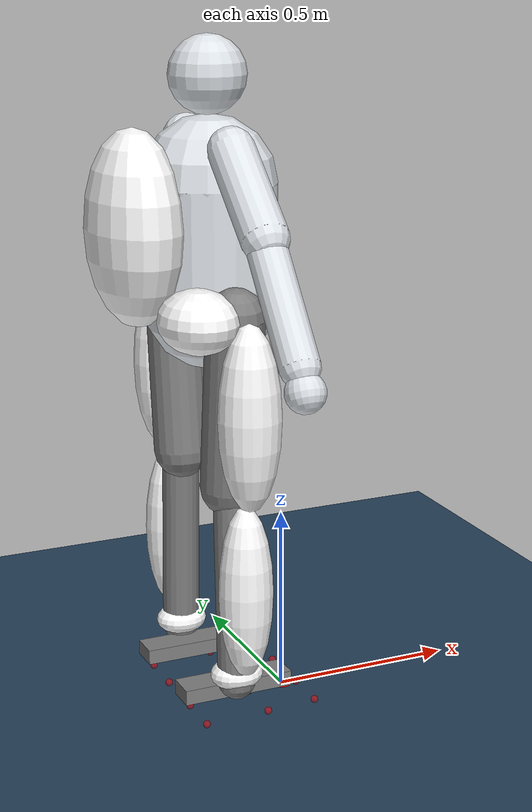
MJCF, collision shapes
<mujoco model='exoskeleton'>
            <compiler meshdir="obj-files" angle="degree" autolimits="true"/>
            <size nuser_actuator='1' nuser_sensor='8' nuser_geom='1'/>
            <option timestep="0.02" iterations="5" ls_iterations="10" gravity='0 0 -9.81'>
                <flag multiccd="disable"/>
            </option>

            <visual>
                <map force="0.1" zfar="30"/>
                <rgba haze="0.15 0.25 0.35 1"/>
                <quality shadowsize="4096"/>
                <global offwidth="800" offheight="800"/>
            </visual>

            <default>
                <site group="5" />
                <motor ctrlrange="-1 1" ctrllimited="true" />
                <geom contype="0" conaffinity="0" condim="1" solref="0.005 1" />
                <equality solref="0.005 1" />
            </default>

            <!-- Nested defaults for exoskeleton, collisions, and joints -->
            <default>
                <default class="exoskeleton">
                <geom material="march_grey" group="2" contype="0" conaffinity="0"/>
                </default>
                <default class= "humanoid">
                <geom material="march_grey" group="1" contype="0" conaffinity="0"/>
                </default>
                <default class ="foot_collision">
                  <geom group="3" contype="1" conaffinity="1" friction = "1" rgba="1 1 1 0.5"/>
                </default>

                <default class="collision">
                <geom type="capsule" group="3" contype="1" conaffinity="1" rgba="1 1 1 0.5"/>
                </default>

                <default class="L_collision">
                <geom type="capsule" group="3" contype="2" conaffinity="4" rgba="1 1 1 0.5"/>
                </default>

                <default class="R_collision">
                <geom type="capsule" group="3" contype="4" conaffinity="2" rgba="1 1 1 0.5"/>
                </default>

                <default class="HAA_joint">
                <joint damping="107.692308" armature="5.4" frictionloss="5" stiffness="0"/>
                </default>

                <default class="ADPF_joint">
                <joint damping="43.658537" armature="2.2" frictionloss="5" stiffness="0"/>
                </default>

                <default class="rotational_joint">
                <joint damping="63.451777" armature="9.98" frictionloss="5" stiffness="0"/>
                </default>

                <default class="AIE_joint">
                <joint damping="63.451777" armature="2.2" frictionloss="5" stiffness="0"/>
                </default>
            </default>

            <asset>
                <texture type="skybox" builtin="gradient" rgb1=".3 .5 .7" rgb2="0 0 0" width="512" height="512"/>
                <texture name="body" type="cube" builtin="flat" mark="cross" width="127" height="1278"
                        rgb1="0.8 0.6 0.4" rgb2="0.8 0.6 0.4" markrgb="1 1 1" random="0.01"/>
                <texture name="grid" type="2d" builtin="checker" width="512" height="512" rgb1=".1 .2 .3" rgb2=".2 .3 .4"/>
                <material name="grid" texture="grid" texrepeat="1 1" texuniform="true" reflectance=".2"/>
                <material name="march_grey" rgba=".87 .89 .91 1"/>
                <material name="collision" rgba="1 0 0 1"/>

                <mesh name="backpack"    scale="-1 1 1"   file="Backplate.obj"/>
                <mesh name="L_Ankle"     scale="-1 -1 1"   file="L_Ankle.obj"/>
                <mesh name="L_Hip"       scale="-1 -1 1"   file="L_Hip.obj"/>
                <mesh name="L_UpperLeg"  scale="-1 -1 1"   file="L_UpperLeg.obj"/>
                <mesh name="L_LowerLeg"  scale="-1 -1 1"   file="L_LowerLeg.obj"/>
                <mesh name="L_Sole"      scale="-1 -1 1"   file="L_Foot.obj"/>

                <mesh name="R_Ankle"     scale="-1 1 1"    file="L_Ankle.obj"/>
                <mesh name="R_Hip"       scale="-1 1 1"    file="L_Hip.obj"/>
                <mesh name="R_UpperLeg"  scale="-1 1 1"    file="L_UpperLeg.obj"/>
                <mesh name="R_LowerLeg"  scale="-1 1 1"    file="L_LowerLeg.obj"/>
                <mesh name="R_Sole"      scale="-1 1 1"    file="L_Foot.obj"/>
            </asset>

  <actuator>
    <motor name="left_ankle_ie" gear="100" joint="left_ankle_ie" />
    <motor name="left_ankle_dpf" gear="100" joint="left_ankle_dpf" />
    <motor name="left_hip_aa" gear="100" joint="left_hip_aa" />
    <motor name="left_hip_fe" gear="100" joint="left_hip_fe" />
    <motor name="left_knee" gear="100" joint="left_knee" />
    <motor name="right_ankle_ie" gear="100" joint="right_ankle_ie" />
    <motor name="right_ankle_dpf" gear="100" joint="right_ankle_dpf" />
    <motor name="right_hip_aa" gear="100" joint="right_hip_aa" />
    <motor name="right_hip_fe" gear="100" joint="right_hip_fe" />
    <motor name="right_knee" gear="100" joint="right_knee" />

  </actuator>

            <sensor>

        <!-- ZMP sensors right foot-->
     <!--Back left  -->
    <framepos name="R_foot_pos_bl" objtype="geom" objname="R_foot_contact_bl"/>
    <!--Back right  -->
    <framepos name="R_foot_pos_br" objtype="geom" objname="R_foot_contact_br"/>
    <!--Front left  -->
    <framepos name="R_foot_pos_fl" objtype="geom" objname="R_foot_contact_fl"/>
    <!--Front right  -->
    <framepos name="R_foot_pos_fr" objtype="geom" objname="R_foot_contact_fr"/>

    <!-- ZMP sensors left foot-->
    <framepos name="L_foot_pos_bl" objtype="geom" objname="L_foot_contact_bl"/>
    <framepos name="L_foot_pos_br" objtype="geom" objname="L_foot_contact_br"/>
    <framepos name="L_foot_pos_fl" objtype="geom" objname="L_foot_contact_fl"/>
    <framepos name="L_foot_pos_fr" objtype="geom" objname="L_foot_contact_fr"/>

                <!-- Noise & cutoff must be determined -->
                <!-- Noise & cutoff must be determined -->
              <framequat name='backpack_orientation' objtype='site' objname='imu_backpack'/>
              <gyro name='vel_imu_backpack' site='imu_backpack' noise='0' cutoff='34.9'/>
              <accelerometer name='acc_imu_backpack' site='imu_backpack' noise='0' cutoff='157'/>
              <subtreecom name="torso_subtreecom" body="backpack"/>
              <framequat name='L_UL_orientation' objtype='site' objname='L_UL_imu'/>
              <gyro name='vel_L_UL_imu' site='L_UL_imu' noise='0' cutoff='34.9'/>
              <accelerometer name='acc_L_UL_imu' site='L_UL_imu' noise='0' cutoff='157'/>

              <framequat name='L_LL_orientation' objtype='site' objname='L_LL_imu'/>
              <gyro name='vel_L_LL_imu' site='L_LL_imu' noise='0' cutoff='34.9'/>
              <accelerometer name='acc_L_LL_imu' site='L_LL_imu' noise='0' cutoff='157'/>

              <framequat name="R_UL_orientation" objtype="site" objname="R_UL_imu"/>
              <gyro name="vel_R_UL_imu" site="R_UL_imu" noise="0" cutoff="34.9"/>
              <accelerometer name="acc_R_UL_imu" site="R_UL_imu" noise="0" cutoff="157"/>

              <framequat name="R_LL_orientation" objtype="site" objname="R_LL_imu"/>
              <gyro name="vel_R_LL_imu" site="R_LL_imu" noise="0" cutoff="34.9"/>
              <accelerometer name="acc_R_LL_imu" site="R_LL_imu" noise="0" cutoff="157"/>

              <framequat name="L_hip_orientation" objtype="site" objname="L_hip_imu"/>
              <gyro name="vel_L_hip_imu" site="L_hip_imu" noise="0" cutoff="34.9"/>
              <accelerometer name="acc_L_hip_imu" site="L_hip_imu" noise="0" cutoff="157"/>

              <framequat name="R_hip_orientation" objtype="site" objname="R_hip_imu"/>
              <gyro name="vel_R_hip_imu" site="R_hip_imu" noise="0" cutoff="34.9"/>
              <accelerometer name="acc_R_hip_imu" site="R_hip_imu" noise="0" cutoff="157"/>

              <framequat name="L_ankle_orientation" objtype="site" objname="L_ankle_imu"/>
              <gyro name="vel_L_ankle_imu" site="L_ankle_imu" noise="0" cutoff="34.9"/>
              <accelerometer name="acc_L_ankle_imu" site="L_ankle_imu" noise="0" cutoff="157"/>

              <framequat name="R_ankle_orientation" objtype="site" objname="R_ankle_imu"/>
              <gyro name="vel_R_ankle_imu" site="R_ankle_imu" noise="0" cutoff="34.9"/>
              <accelerometer name="acc_R_ankle_imu" site="R_ankle_imu" noise="0" cutoff="157"/>

              <framequat name="L_foot_orientation" objtype="site" objname="L_foot_imu"/>
              <gyro name="vel_L_foot_imu" site="L_foot_imu" noise="0" cutoff="34.9"/>
              <accelerometer name="acc_L_foot_imu" site="L_foot_imu" noise="0" cutoff="157"/>

              <framequat name="R_foot_orientation" objtype="site" objname="R_foot_imu"/>
              <gyro name="vel_R_foot_imu" site="R_foot_imu" noise="0" cutoff="34.9"/>
              <accelerometer name="acc_R_foot_imu" site="R_foot_imu" noise="0" cutoff="157"/>

              <!-- Human body IMUs -->
              <framequat name="torso_orientation" objtype="site" objname="torso_imu"/>
              <gyro name="vel_torso_imu" site="torso_imu" noise="0" cutoff="34.9"/>
              <accelerometer name="acc_torso_imu" site="torso_imu" noise="0" cutoff="157"/>

              <framequat name="right_arm_orientation" objtype="site" objname="right_arm_imu"/>
              <gyro name="vel_right_arm_imu" site="right_arm_imu" noise="0" cutoff="34.9"/>
              <accelerometer name="acc_right_arm_imu" site="right_arm_imu" noise="0" cutoff="157"/>

              <framequat name="right_forearm_orientation" objtype="site" objname="right_forearm_imu"/>
              <gyro name="vel_right_forearm_imu" site="right_forearm_imu" noise="0" cutoff="34.9"/>
              <accelerometer name="acc_right_forearm_imu" site="right_forearm_imu" noise="0" cutoff="157"/>

              <framequat name="right_hand_orientation" objtype="site" objname="right_hand_imu"/>
              <gyro name="vel_right_hand_imu" site="right_hand_imu" noise="0" cutoff="34.9"/>
              <accelerometer name="acc_right_hand_imu" site="right_hand_imu" noise="0" cutoff="157"/>

              <framequat name="left_arm_orientation" objtype="site" objname="left_arm_imu"/>
              <gyro name="vel_left_arm_imu" site="left_arm_imu" noise="0" cutoff="34.9"/>
              <accelerometer name="acc_left_arm_imu" site="left_arm_imu" noise="0" cutoff="157"/>

              <framequat name="left_forearm_orientation" objtype="site" objname="left_forearm_imu"/>
              <gyro name="vel_left_forearm_imu" site="left_forearm_imu" noise="0" cutoff="34.9"/>
              <accelerometer name="acc_left_forearm_imu" site="left_forearm_imu" noise="0" cutoff="157"/>

              <framequat name="left_hand_orientation" objtype="site" objname="left_hand_imu"/>
              <gyro name="vel_left_hand_imu" site="left_hand_imu" noise="0" cutoff="34.9"/>
              <accelerometer name="acc_left_hand_imu" site="left_hand_imu" noise="0" cutoff="157"/>

              <framequat name="head_orientation" objtype="site" objname="head_imu"/>
              <gyro name="vel_head_imu" site="head_imu" noise="0" cutoff="34.9"/>
              <accelerometer name="acc_head_imu" site="head_imu" noise="0" cutoff="157"/>

                <!-- Pressure sensors for left foot -->
                <touch name="pressure_sp0" site="sp0" cutoff="1"/>
                <touch name="pressure_sp1" site="sp1" cutoff="1"/>
                <touch name="pressure_sp2" site="sp2" cutoff="1"/>
                <touch name="pressure_sp3" site="sp3" cutoff="1"/>

                <!-- Pressure sensors for right foot -->
                <touch name="pressure_sp4" site="sp4" cutoff="1"/>
                <touch name="pressure_sp5" site="sp5" cutoff="1"/>
                <touch name="pressure_sp6" site="sp6" cutoff="1"/>
                <touch name="pressure_sp7" site="sp7" cutoff="1"/>
            </sensor>
            <keyframe><key name='home' qpos='0 0 1.01 0.9990482 0 0.0436194 0 0.0538850788003355 0.163444867517726 0.3114220463634088 0.1834168026738673 0.0538736103022484 0.0538904247681917 0.1634221502873682 0.3113776463689615 0.1833954904567925 0.0538794144550795'/></keyframe><worldbody><geom name='floor' size='0 0 .05' type='plane' material='grid' pos='0 0 0' conaffinity='15' condim='6' solref='0.000002 1' solimp='0.99 0.999 0.000001' friction='3 0.005 0.0001'/><light name='spotlight' mode='targetbodycom' target='backpack' diffuse='.8 .8 .8' specular='0.3 0.3 0.3' pos='0 -20 4' cutoff='10'/>

            <body name="safety_catcher" pos="-0.4 0.0 1.03">
            <inertial pos="0 0 0" mass="0.1" diaginertia="10 10 10"/>

            <joint name='safety_catch_free' type='free'/>

      <body name="backpack" pos="0.00000 0.00000 0.28000">
        <light name="top" pos="0.00000 0.00000 2.00000" mode="trackcom" />
        <camera name="diag" pos="3.00000 -2.50000 1.00000" xyaxes="1 1 0 0 1 2" mode="track" />
        <camera name="right" pos="0.00000 -3.00000 1.00000" xyaxes="1 0 0 0 1 2" mode="track" />
        <camera name="front" pos="4.00000 0.00000 0.00000" xyaxes="0 1 0 0 1 2" mode="track" />
        <inertial mass="3.205" pos="-0.00400 0 -0.01700" fullinertia="0.13140 0.04400 0.08870 -0.00000 -0.00100 0.00000" />
        <site name="imu_backpack" size="0.01" pos="-0.00400 0 -0.01700" />
        <geom name="backpack" type="mesh" mesh="backpack" />
        <geom name="backpack_ellipsoid" type="ellipsoid" size="0.12 0.18 0.25" material="march_grey" class="collision"/>
        <site name="pos_backpack" size="0.001" pos="0.00000 0.00000 0.00000" />

         <body name ="torso" pos="0.2 0 -0.3" >
          <geom name="torso" type="capsule" fromto="0 0 0.1 0 0 0.4" size="0.175" mass="43.2" class="humanoid"/>
          <site name="torso_imu" size="0.01" pos="0 0 0.25" />
        </body>

        <body name="right arm" pos="0.20 0.150 0.2" euler="25 0 0" >
          <geom name="right arm" type="capsule" fromto="0 0.105 -0.250 0 0 0" size="0.06" mass="3.38" class="humanoid"/>
          <site name="right_arm_imu" size="0.01" pos="0 0.0525 -0.125" />

          <body name="right forearm" pos="0 0.105 -0.280">
            <geom name="right forearm" type="capsule" fromto="0 0.065 -0.290 0 0 0" size="0.05" mass="1.15" class="humanoid"/>
            <site name="right_forearm_imu" size="0.01" pos="0 0.0325 -0.145" />

            <body name="right hand" pos="0 0.07 -0.300">
              <geom name="right hand" type="sphere" size="0.05" pos="0 0.0 -0.05" mass="0.9876" class="humanoid"/>
              <site name="right_hand_imu" size="0.01" pos="0 0 -0.05" />
            </body>
          </body>
        </body>

        <body name="left arm" pos="0.20 -0.150 0.2" euler="-25 0 0">
          <geom name="left arm" type="capsule" fromto="0 -0.105 -0.250 0 0 0" size="0.06" mass="3.38" class="humanoid"/>
          <site name="left_arm_imu" size="0.01" pos="0 -0.0525 -0.125" />

          <body name="left forearm" pos="0 -0.105 -0.280">
            <geom name="left forearm" type="capsule" fromto="0 -0.065 -0.290 0 0 0" size="0.05" mass="1.15" class="humanoid"/>
            <site name="left_forearm_imu" size="0.01" pos="0 -0.0325 -0.145" />
            <body name="left hand" pos="0 -0.07 -0.300">

              <geom name="left hand" type="sphere" size="0.05" pos="0 0 -0.05" mass="0.9876" class="humanoid"/>
              <site name="left_hand_imu" size="0.01" pos="0 0 -0.05" />
            </body>
          </body>
        </body>

        <body name="head">
          <geom name="head" type="sphere" size="0.1" pos="0.2 0 0.37" mass="8" class="humanoid"/>
          <site name="head_imu" size="0.01" pos="0.2 0 0.37" />
        </body>

        <body name="L_hip" pos="0.00400 0.09200 -0.20000">
          <inertial mass="3.363" pos="0.12400 0.17000 0.00700" fullinertia="0.11230 0.08360 0.18680 -0.08410 -0.00300 -0.00320" />
          <joint name="left_hip_aa" axis="-1 0 0" range="-20 10" limited="true" class="HAA_joint" />
          <site name="tor_L_HAA" size="0.01" pos="0.00000 0.00000 0.00000" />
          <site name="pos_L_HAA" size="0.01" pos="0.00000 0.00000 0.00000" />
          <site name="L_hip_imu" size="0.01" pos="0.12400 0.17000 0.00700" />
          <geom name="L_Hip" type="mesh" mesh="L_Hip" />
         <geom name="L_Hip_ellipsoid" type="ellipsoid" size="0.10 0.12 0.08" pos="0.08 0.12 0" material="march_grey" class="L_collision"/>

         <body name="L_UL" pos="0.17600 0.24900 0.00100">
            <inertial mass="4.473" pos="0.02600 -0.07500 -0.23600" fullinertia="0.49120 0.46540 0.04310 0.00890 0.02870 -0.11260" />
            <joint name="left_hip_fe" axis="0 -1 0" range="-20 115" limited="true" class="rotational_joint" />
            <site name="tor_L_HFE" size="0.01" pos="0.00000 0.00000 0.00000" />
            <site name="pos_L_HFE" size="0.01" pos="0.00000 0.00000 0.00000" />
            <site name="L_UL_imu" size="0.01" pos="0.02600 -0.07500 -0.23600" />

            <geom name="L_UpperLeg" type="mesh" mesh="L_UpperLeg" />
            <geom name="L_UpperLeg_ellipsoid" type="ellipsoid" size="0.08 0.08 0.24" pos="0 -0.04 -0.235" material="march_grey" class="L_collision"/>

                    <body> <geom type="capsule" fromto="0 -0.125 0 0 -0.175 -0.45" size="0.075" mass="8.44"/> </body>

             <body name="L_LL" pos="0.00200 -0.0600 -0.47200">
              <inertial mass="4.973" pos="0.00300 -0.04600 -0.14500" fullinertia="0.21540 0.22000 0.03000 0.00140 -0.00290 -0.03550" />
              <joint name="left_knee" axis="0 1 0" range="0 125" limited="true" class="rotational_joint" />
              <site name="tor_L_KFE" size="0.01" pos="0.00000 0.00000 0.00000" />
              <site name="pos_L_KFE" size="0.01" pos="0.00000 0.00000 0.00000" />
              <site name="L_LL_imu" size="0.01" pos="0.00300 -0.04600 -0.14500" />
              <geom name="L_LowerLeg" type="mesh" mesh="L_LowerLeg" />
              <geom name="L_LowerLeg_ellipsoid" type="ellipsoid" size="0.07 0.07 0.23" pos="0 -0.015 -0.23" material="march_grey" class="L_collision"/>

                    <body> <geom type="capsule" fromto="0 -0.1 0 0 -0.08 -0.5" size="0.05" mass="2.3"/> </body>

                <body name="L_ankle" pos="0.0000 -0.02500 -0.46800">
                <inertial mass="0.515" pos=" 0.00400 -0.06000 -0.01800" fullinertia="0.00240 0.00260 0.00460 0.00010 -0.00000 -0.00060" />
                <joint name="left_ankle_dpf" axis="0 -1 0" range="-28 17" limited="true" class="AIE_joint" />
                <site name="tor_L_ADPF" size="0.01" pos="0.00000 0.00000 0.00000" />
                <site name="tor_L_AIE" size="0.01" pos="-0.13100 -0.11400 -0.02600" />
                <site name="pos_L_ankle" size="0.01" pos="0.00000 0.00000 0.00000" />
                <site name="L_ankle_imu" size="0.01" pos="0.00400 -0.06000 -0.01800" />

                <geom name="L_Ankle" type="mesh" mesh="L_Ankle" />
                <geom name="L_Ankle_ellipsoid" type="ellipsoid" size="0.07 0.06 0.04" pos="0 -0.06 -0.015" material="march_grey" class="L_collision"/>

               <body name="L_foot" pos="-0.13500 -0.1200 -0.02600">
                  <inertial mass="4.440" pos=" 0.16300 0.02400 -0.06000" fullinertia="0.04700 0.19090 0.17630 -0.01390 0.04760 -0.00130" />
                  <joint name="left_ankle_ie" pos="-0.0 -0.0 -0.0" axis="1 0 0" range="-10 10" limited="true" class="AIE_joint" />
                  <site name="left_foot" pos="0.00000 0.00000 0.00000" size="0.01" rgba="1 0 0 0.5" />
                  <site name="L_foot_imu" size="0.01" pos="0.16300 0.02400 -0.06000" />

                  <!-- Multi-point contact system for left foot -->
                  <!-- Back-right corner -->
                  <geom name="L_foot_contact_br" type="sphere" size="0.0001" pos="0.05000 -0.0600 -0.11900" class="foot_collision"/>
                  <geom name="L_foot_visual_br" type="sphere" size="0.01" pos="0.05000 -0.0600 -0.11900" contype="0" conaffinity="0" group="1" density="0" rgba="1 0 0 0.5"/>

                  <!-- Back-left corner -->
                  <geom name="L_foot_contact_bl" type="sphere" size="0.0001" pos="0.05000 0.0600 -0.11900" class="foot_collision"/>
                  <geom name="L_foot_visual_bl" type="sphere" size="0.01" pos="0.05000 0.0600 -0.11900" contype="0" conaffinity="0" group="1" density="0" rgba="1 0 0 0.5"/>

                  <!-- Front-right corner -->
                   <geom name="L_foot_contact_fr" type="sphere" size="0.0001" pos="0.3600 -0.0600 -0.11000" class="foot_collision"/>
                  <geom name="L_foot_visual_fr" type="sphere" size="0.01" pos="0.3600 -0.0600 -0.11000" contype="0" conaffinity="0" group="1" density="0" rgba="1 0 0 0.5"/>

                  <!-- Front-left corner -->
                  <geom name="L_foot_contact_fl" type="sphere" size="0.0001" pos="0.3600 0.0600 -0.11000" class="foot_collision"/>
                  <geom name="L_foot_visual_fl" type="sphere" size="0.01" pos="0.3600 0.0600 -0.11000" contype="0" conaffinity="0" group="1" density="0" rgba="1 2 2 2"/>
                  <!-- Mid-back-left -->
                  <geom name="L_foot_contact_mbl" type="sphere" size="0.0001" pos="0.22250 -0.06500 -0.11350" class="foot_collision"/>
                  <geom name="L_foot_visual_mbl" type="sphere" size="0.01" pos="0.22250 -0.06500 -0.11350" contype="0" conaffinity="0" group="1" density="0" rgba="1 0 0 0.5"/>

                  <!-- Mid-back-right -->
                  <geom name="L_foot_contact_mbr" type="sphere" size="0.0001" pos="0.22250 0.06500 -0.11350" class="foot_collision"/>
                  <geom name="L_foot_visual_mbr" type="sphere" size="0.01" pos="0.22250 0.06500 -0.11350" contype="0" conaffinity="0" group="1" density="0" rgba="1 0 0 0.5"/>

                  <geom name="L_Foot" type="mesh" mesh="L_Sole" />

                  <!-- Touch sensor sites -->
                  <site name="sp0" pos="0.05000 -0.0600 -0.11900" type="sphere" size=".01" group="10" />
                  <site name="sp1" pos="0.05000 0.0600 -0.11900" type="sphere" size=".01" group="10" />
                  <site name="sp2" pos="0.3600 -0.05500 -0.11000" type="sphere" size=".01" group="10" />
                  <site name="sp3" pos="0.3600 0.05500 -0.11000" type="sphere" size=".01" group="10" />

                        <body> <geom type="box" pos="0.151 0 -.045" size="0.15 0.04 0.02"/> </body>

                        </body>
                    </body>
                    </body>
                </body>
                </body>

                <!--  RIGHT LEG -->
        <body name="R_hip" pos="0.00400 -0.09200 -0.20000">
          <inertial mass="3.363" pos="0.11200 -0.17000 0.00700" fullinertia="0.11230 0.08360 0.18680 0.08410 -0.00300 0.00320" />
          <joint name="right_hip_aa" axis="1 0 0" range="-20 10" limited="true" class="HAA_joint" />
          <site name="tor_R_HAA" size="0.01" pos="0.00000 0.00000 0.00000" />
          <site name="pos_R_HAA" size="0.01" pos="0.00000 0.00000 0.00000" />
          <site name="R_hip_imu" size="0.01" pos="0.11200 -0.17000 0.00700" />

          <geom name="R_Hip" type="mesh" mesh="R_Hip"  />
          <geom name="R_Hip_ellipsoid" type="ellipsoid" size="0.10 0.12 0.08" pos="0.08 -0.12 0" material="march_grey" class="R_collision"/>

          <body name="R_UL" pos="0.17600 -0.24900 0.00100">
            <inertial mass="4.473" pos=" 0.01000 0.06600 -0.22600" fullinertia="0.46570 0.44360 0.03460 -0.00320 0.01130 0.09930" />
            <joint name="right_hip_fe" axis="0 -1 0" range="-20 115" limited="true" class="rotational_joint" />
            <site name="tor_R_HFE" size="0.01" pos="0.00000 0.00000 0.00000" />
            <site name="pos_R_HFE" size="0.01" pos="0.00000 0.00000 0.00000" />
            <site name="R_UL_imu" size="0.01" pos="0.01000 0.06600 -0.22600" />

            <geom name="R_UpperLeg" type="mesh" mesh="R_UpperLeg" />
            <geom name="R_UpperLeg_ellipsoid" type="ellipsoid" size="0.08 0.08 0.24" pos="0 0.04 -0.235" material="march_grey" class="R_collision"/>

                    <body> <geom type="capsule" fromto="0 0.125 0 0 0.175 -0.45" size="0.075" mass="8.44"/> </body>

            <body name="R_LL" pos="0.00200 0.0600 -0.47200">
              <inertial mass="4.973" pos=" 0.00800 0.03900 -0.14100" fullinertia="0.21540 0.22000 0.03000 -0.00140 -0.00290 0.03550" />
              <joint name="right_knee" axis="0 1 0" range="0 125" limited="true" class="rotational_joint" />
              <site name="tor_R_KFE" size="0.01" pos="0.00000 0.00000 0.00000" />
              <site name="pos_R_KFE" size="0.01" pos="0.00000 0.00000 0.00000" />
              <site name="R_LL_imu" size="0.01" pos="0.00800 0.03900 -0.14100" />

              <geom name="R_LowerLeg" type="mesh" mesh="R_LowerLeg" />
              <geom name="R_LowerLeg_ellipsoid" type="ellipsoid" size="0.07 0.07 0.23" pos="0 0.015 -0.23" material="march_grey" class="R_collision"/>

                    <body> <geom type="capsule" fromto="0 0.1 0 0 0.08 -0.5" size="0.05" mass="2.3"/> </body>

             <body name="R_ankle" pos="0.00200 0.02500 -0.46800">
                <inertial mass="0.515" pos=" 0.00400 0.06000 -0.01800" fullinertia="0.00240 0.00270 0.00460 0.00010 0.00000 0.00060" />
                <joint name="right_ankle_dpf" axis="0 -1 0" range="-28 17" limited="true" class="AIE_joint" />
                <site name="pos_R_ankle" size="0.01" pos="0.00000 0.00000 0.00000" />
                <site name="tor_R_ADPF" size="0.01" pos="0.00000 0.00000 0.00000" />
                <site name="tor_R_AIE" size="0.01" pos="-0.13100 0.11400 -0.02600" />
                <site name="R_ankle_imu" size="0.01" pos="0.00400 0.06000 -0.01800" />

                <geom name="R_Ankle" type="mesh" mesh="R_Ankle" />
                <geom name="R_Ankle_ellipsoid" type="ellipsoid" size="0.07 0.06 0.04" pos="0 0.06 -0.015" material="march_grey" class="R_collision"/>

                <body name="R_foot" pos="-0.13500 0.1200 -0.02600">
                    <joint name="right_ankle_ie" pos="-0.0 0.0 -0.0" axis="-1 0 0" range="-10 10" limited="true" class="AIE_joint" />
                  <inertial mass="4.440" pos=" 0.16700 -0.02600 -0.06100" fullinertia="0.04700 0.19280 0.17840 0.01520 0.04800 0.00080" />
                  <geom name="R_Foot" type="mesh" mesh="R_Sole" />
                  <site name="right_foot" pos="0.00000 0.00000 0.00000" size="0.01" rgba="1 0 0 0.5" />
                  <site name="R_foot_imu" size="0.01" pos="0.16700 -0.02600 -0.06100" />

                  <!-- Multi-point contact system for right foot -->
                  <!-- Back-left corner -->
                  <!-- Back-left corner -->
                   <!-- Since axis = -1, a negative y value means its shifted towards the right, so its opposite to the left foot -->
                  <geom name="R_foot_contact_br" type="sphere" size="0.0001" pos="0.05000 -0.0600 -0.11900" class="foot_collision"/>
                  <geom name="R_foot_visual_br" type="sphere" size="0.01" pos="0.05000 -0.0600 -0.11900" contype="0" conaffinity="0" group="1" density="0" rgba="1 0 0 0.5"/>

                  <!-- Back-right corner -->
                  <geom name="R_foot_contact_bl" type="sphere" size="0.0001" pos="0.05000 0.0600 -0.11900" class="foot_collision"/>
                  <geom name="R_foot_visual_bl" type="sphere" size="0.01" pos="0.05000 0.0600 -0.11900" contype="0" conaffinity="0" group="1" density="0" rgba="1 0 0 0.5"/>

                  <!-- Front-left corner -->
                  <geom name="R_foot_contact_fr" type="sphere" size="0.0001" pos="0.3600 -0.0600 -0.11000" class="foot_collision"/>
                  <geom name="R_foot_visual_fr" type="sphere" size="0.01" pos="0.3600 -0.0600 -0.11000" contype="0" conaffinity="0" group="1" density="0" rgba="1 0 0 0.5"/>

                  <!-- Front-right corner -->
                  <geom name="R_foot_contact_fl" type="sphere" size="0.0001" pos="0.3600 0.0600 -0.11000" class="foot_collision"/>
                  <geom name="R_foot_visual_fl" type="sphere" size="0.01" pos="0.3600 0.0600 -0.11000" contype="0" conaffinity="0" group="1" density="0" rgba="1 0 0 0.5"/>
                  <!-- Mid-back-left -->
                  <geom name="R_foot_contact_mbr" type="sphere" size="0.0001" pos="0.22250 -0.06500 -0.11350" class="foot_collision"/>
                  <geom name="R_foot_visual_mbr" type="sphere" size="0.01" pos="0.22250 -0.06500 -0.11350" contype="0" conaffinity="0" group="1" density="0" rgba="1 0 0 0.5"/>

                  <!-- Mid-back-right -->
                  <geom name="R_foot_contact_mbl" type="sphere" size="0.0001" pos="0.22250 0.06500 -0.11350" class="foot_collision"/>
                  <geom name="R_foot_visual_mbl" type="sphere" size="0.01" pos="0.22250 0.06500 -0.11350" contype="0" conaffinity="0" group="1" density="0" rgba="1 0 0 0.5"/>

                  <!-- Touch sensor sites -->
                  <site name="sp4" pos="0.05000 -0.0600 -0.11900" type="sphere" size=".01" group="10" />
                  <site name="sp5" pos="0.05000 0.0600 -0.11900" type="sphere" size=".01" group="10" />
                  <site name="sp6" pos="0.3600 -0.05500 -0.11000" type="sphere" size=".01" group="10" />
                  <site name="sp7" pos="0.3600 0.05500 -0.11000" type="sphere" size=".01" group="10" />

                        <body> <geom type="box" pos="0.151 0 -.045" size="0.15 0.04 0.02"/> </body>

                        </body>
                    </body>
                    </body>
                </body>
                </body>
            </body>
            </body>
            <!-- ZMP Marker on the floor -->
            <body name="zmp_marker" pos="0 0 0.001" mocap="true">
                <geom name="zmp_sphere" type="sphere" size="0.03" rgba="1 0 0 1" contype="0" conaffinity="0"/>
                <site name="zmp_site" size="0.001" pos="0 0 0"/>
            </body>
        </worldbody></mujoco>
